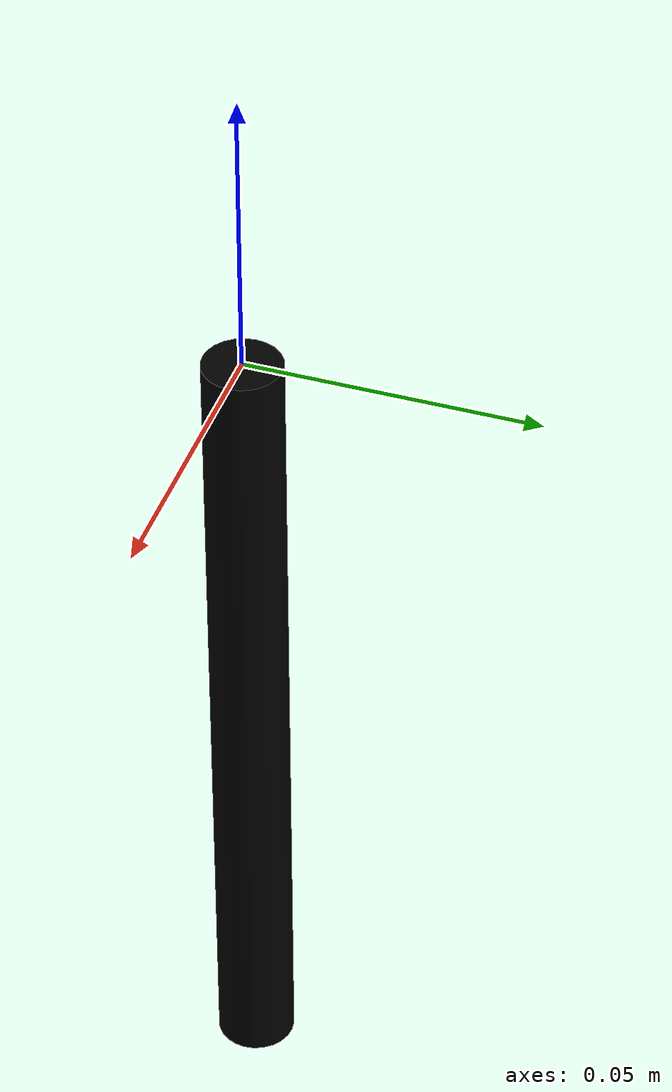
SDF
<?xml version='1.0' encoding='utf-8'?>
<!-- https://stackoverflow.com/questions/79470924/does-drake-have-an-equivalent-of-mujoco-mocap-bodies -->
<sdf version="1.9" xmlns:drake="http://drake.mit.edu">
<model name="rope_holder">
    <pose>0 0 0 0 0 0</pose>
    <joint name="translate_joint_x" type="prismatic">
      <parent>world</parent>
      <child>false_0</child>
      <axis>
        <xyz expressed_in="__model__">1 0 0</xyz>
      </axis>
      <drake:controller_gains p='1000000.0' d='1000.0' />
    </joint>
    <link name="false_0">
      <inertial>
        <inertia>
          <ixx>0.0001</ixx>
          <ixy>0</ixy>
          <ixz>0</ixz>
          <iyy>0.0001</iyy>
          <iyz>0</iyz>
          <izz>0.0001</izz>
        </inertia>
        <mass>0.09</mass>
      </inertial>
    </link>
    <joint name="translate_joint_z" type="prismatic">
      <parent>false_0</parent>
      <child>false_1</child>
      <axis>
        <xyz expressed_in="__model__">0 0 1</xyz>
      </axis>
      <drake:controller_gains p='1000000.0' d='1000.0' />
    </joint>
    <link name="false_1">
      <inertial>
        <inertia>
          <ixx>0.0001</ixx>
          <ixy>0</ixy>
          <ixz>0</ixz>
          <iyy>0.0001</iyy>
          <iyz>0</iyz>
          <izz>0.0001</izz>
        </inertia>
        <mass>0.09</mass>
      </inertial>
    </link>
    <joint name="rotate_joint" type="revolute">
      <parent>false_1</parent>
      <child>rope_holder_body</child>
      <axis>
        <xyz expressed_in="false_1">0 -1 0</xyz>
      </axis>
      <drake:controller_gains p='10000000.0' d='1000.0' />
    </joint>

    <link name="rope_holder_body">
      <inertial>
        <inertia>
          <ixx>0.0001</ixx>
          <ixy>0</ixy>
          <ixz>0</ixz>
          <iyy>0.0001</iyy>
          <iyz>0</iyz>
          <izz>0.0001</izz>
        </inertia>
        <mass>0.09</mass>
      </inertial>
      <visual name="rope_holder_body_visual">
      <pose degrees="True" relative_to="rope_holder_body">0 0 -0.075 0 0 0</pose>
        <geometry>
          <cylinder>
            <radius>0.00675</radius>
            <length>0.15</length>
          </cylinder>
        </geometry>
        <material>
          <diffuse>0 0 0 1</diffuse>
        </material>
      </visual>
    </link>
    <frame name="rope_holder_center" attached_to="rope_holder_body">
      <pose degrees="True" relative_to="rope_holder_body">0 0 0.02 0 0 0</pose>
    </frame>
    <frame name="rope_holder_tip" attached_to="rope_holder_body">
      <pose degrees="True">0 0 -0.15 0 90 0</pose>
    </frame>
    <frame name="rope_start_frame" attached_to="rope_holder_body">
      <pose degrees="True">0 0 -0.14 0 90 0</pose>
    </frame>
  </model>
</sdf>
